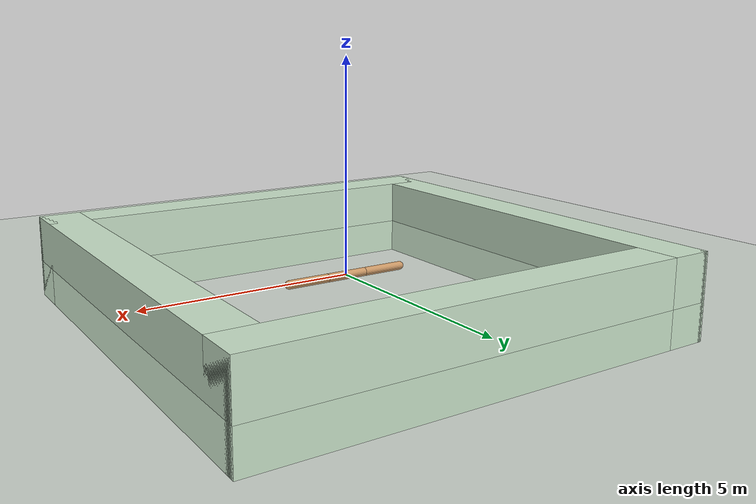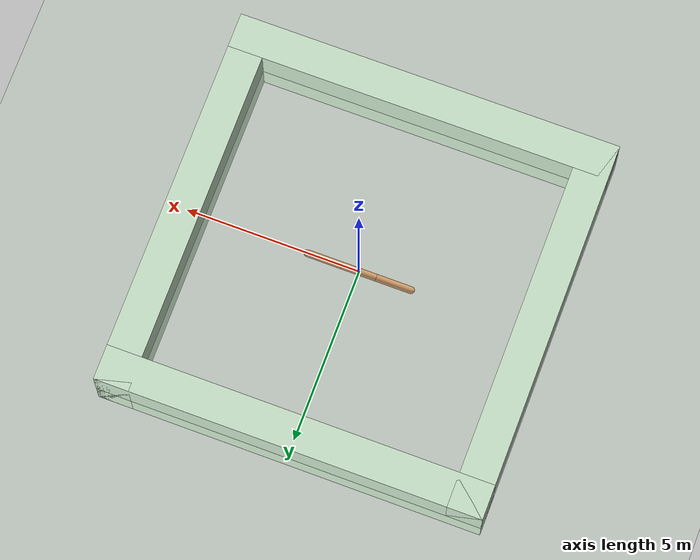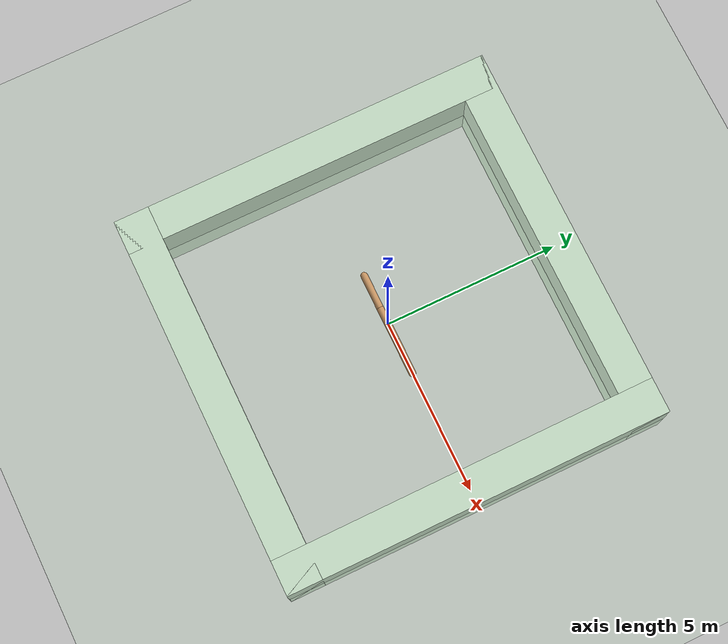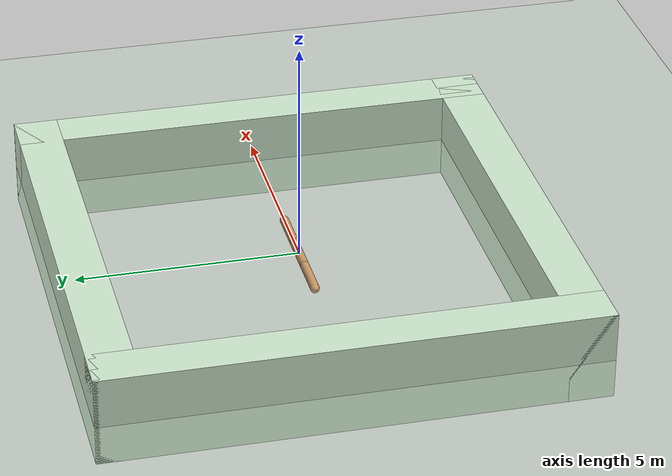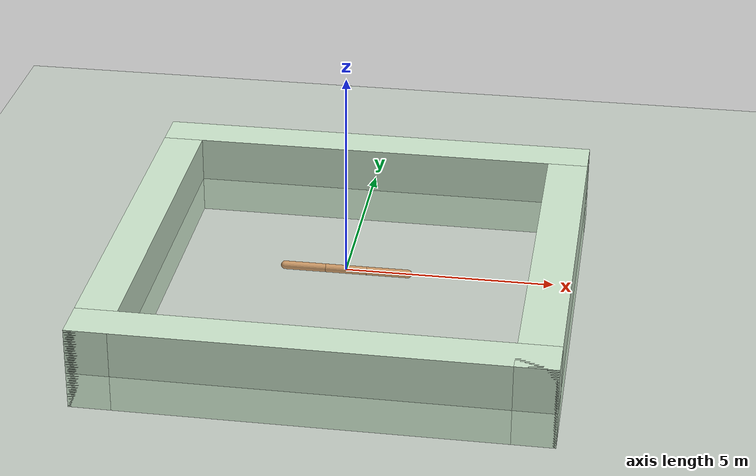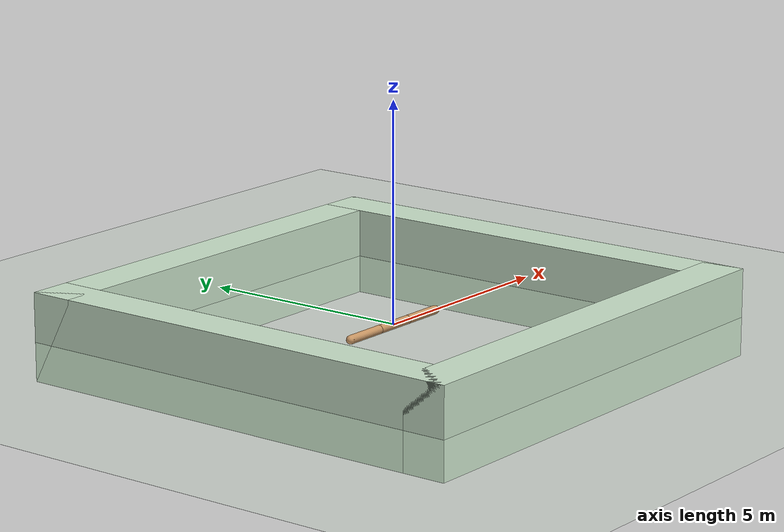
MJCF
<mujoco model="swimmer">
  <compiler inertiafromgeom="true" angle="degree" coordinate="local" />
  <custom>
    <numeric name="frame_skip" data="50" />
  </custom>
  <option timestep="0.001" density="4000" viscosity="0.1" collision="predefined" integrator="Euler" iterations="1000">
    <flag warmstart="disable" />
  </option>
  <default>
    <geom contype='1' conaffinity='1' condim='1' rgba='0.8 0.6 .4 1' material="geom" />
  </default>
  <asset>
    <material name='trans_geom' />
    <texture name="groundplane" type="2d" builtin="checker" width="200" height="10" />
    <material name="MatGnd" texture="groundplane" texscale="1 .6" specular="1" shininess="1" reflectance="0.00001" />
  </asset>
  <worldbody>
    <light directional="true" cutoff="100" exponent="1" diffuse="1 1 1" specular=".1 .1 .1" pos="0 0 1.3" dir="-0 0 -1.3" />
    <geom name='floor' material="MatGnd" pos='0 0 -0.1' size='40 40 0.1' type='plane' conaffinity='1' rgba='0.8 0.9 0.8 1' condim='3' />
    <geom name='wall1' pos='0 -5 0' size='5.5 0.5 1' type='box' conaffinity='1' rgba='0.8 0.9 0.8 1' condim='3' />
    <geom name='wall2' pos='0 5 0' size='5.5 0.5 1' type='box' conaffinity='1' rgba='0.8 0.9 0.8 1' condim='3' />
    <geom name='wall3' pos='-5 0 0' size='0.5 5.5 1' type='box' conaffinity='1' rgba='0.8 0.9 0.8 1' condim='3' />
    <geom name='wall4' pos='5 0 0' size='0.5 5.5 1' type='box' conaffinity='1' rgba='0.8 0.9 0.8 1' condim='3' />

    <!--  ================= SWIMMER ================= /-->
    <body name="torso" pos="0 0 0">
      <geom type="capsule" fromto="1.5 0 0 0.5 0 0" size="0.1" density="1000" />
      <joint pos="0 0 0" type="slide" name="slider1" axis="1 0 0" />
      <joint pos="0 0 0" type="slide" name="slider2" axis="0 1 0" />
      <joint name="rot" type="hinge" pos="0 0 0" axis="0 0 1" />
      <body name="mid" pos="0.5 0 0">
        <geom type="capsule" fromto="0 0 0 -1 0 0" size="0.1" density="1000" />
        <joint name="rot2" type="hinge" pos="0 0 0" axis="0 0 1" range="-100 100" limited="true" />
        <body name="back" pos="-1 0 0">
          <geom type="capsule" fromto="0 0 0 -1 0 0" size="0.1" density="1000" />
          <joint name="rot3" type="hinge" pos="0 0 0" axis="0 0 1" range="-100 100" limited="true" />
        </body>
      </body>
    </body>
  </worldbody>
  <actuator>
    <motor joint="rot2" ctrllimited="true" ctrlrange="-50 50" />
    <motor joint="rot3" ctrllimited="true" ctrlrange="-50 50" />
  </actuator>
  <asset>
    <texture name="texgeom" type="cube" builtin="flat" mark="cross" width="127" height="1278" rgb1="0.8 0.6 0.4" rgb2="0.8 0.6 0.4" markrgb="1 1 1" random="0.01" />
    <material name='geom' texture="texgeom" texuniform="true" />
  </asset>
</mujoco>
